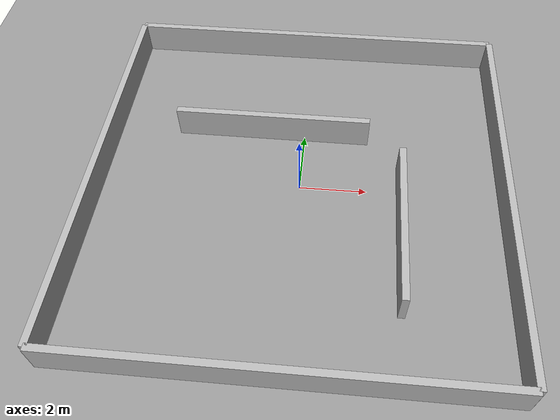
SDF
<?xml version="1.0" ?>
<sdf version="1.8">
  <world name="exploration_test">

    <!-- Core system plugins. Fortress requires these to be listed
         explicitly (Harmonic+ loads most of these by default). -->
    <plugin filename="libignition-gazebo-physics-system.so"
            name="ignition::gazebo::systems::Physics" />
    <plugin filename="libignition-gazebo-user-commands-system.so"
            name="ignition::gazebo::systems::UserCommands" />
    <plugin filename="libignition-gazebo-scene-broadcaster-system.so"
            name="ignition::gazebo::systems::SceneBroadcaster" />
    <!-- Required for the lidar sensors on the rovers to produce data -->
    <plugin filename="libignition-gazebo-sensors-system.so"
            name="ignition::gazebo::systems::Sensors">
      <render_engine>ogre2</render_engine>
    </plugin>
    <!-- Required for the IMU sensors -->
    <plugin filename="libignition-gazebo-imu-system.so"
            name="ignition::gazebo::systems::Imu" />

    <light type="directional" name="sun">
      <cast_shadows>true</cast_shadows>
      <pose>0 0 10 0 0 0</pose>
      <diffuse>0.8 0.8 0.8 1</diffuse>
      <specular>0.2 0.2 0.2 1</specular>
      <direction>-0.5 0.1 -0.9</direction>
    </light>

    <model name="ground_plane">
      <static>true</static>
      <link name="link">
        <collision name="collision">
          <geometry><plane><normal>0 0 1</normal><size>40 40</size></plane></geometry>
        </collision>
        <visual name="visual">
          <geometry><plane><normal>0 0 1</normal><size>40 40</size></plane></geometry>
          <material>
            <ambient>0.6 0.6 0.6 1</ambient>
            <diffuse>0.6 0.6 0.6 1</diffuse>
          </material>
        </visual>
      </link>
    </model>

    <!-- A handful of rooms/corridors so frontier exploration has
         something to do. Each wall is a static box; extend this
         layout freely once the basic swarm is spawning correctly. -->
    <model name="wall_outer_north">
      <static>true</static>
      <pose>0 6 0.5 0 0 0</pose>
      <link name="link">
        <collision name="collision"><geometry><box><size>12 0.2 1</size></box></geometry></collision>
        <visual name="visual"><geometry><box><size>12 0.2 1</size></box></geometry></visual>
      </link>
    </model>
    <model name="wall_outer_south">
      <static>true</static>
      <pose>0 -6 0.5 0 0 0</pose>
      <link name="link">
        <collision name="collision"><geometry><box><size>12 0.2 1</size></box></geometry></collision>
        <visual name="visual"><geometry><box><size>12 0.2 1</size></box></geometry></visual>
      </link>
    </model>
    <model name="wall_outer_east">
      <static>true</static>
      <pose>6 0 0.5 0 0 1.5708</pose>
      <link name="link">
        <collision name="collision"><geometry><box><size>12 0.2 1</size></box></geometry></collision>
        <visual name="visual"><geometry><box><size>12 0.2 1</size></box></geometry></visual>
      </link>
    </model>
    <model name="wall_outer_west">
      <static>true</static>
      <pose>-6 0 0.5 0 0 1.5708</pose>
      <link name="link">
        <collision name="collision"><geometry><box><size>12 0.2 1</size></box></geometry></collision>
        <visual name="visual"><geometry><box><size>12 0.2 1</size></box></geometry></visual>
      </link>
    </model>

    <!-- interior partition splitting the space into two rooms
         with a corridor gap, to force exploration/coordination -->
    <model name="wall_interior_1">
      <static>true</static>
      <pose>-1 2 0.5 0 0 0</pose>
      <link name="link">
        <collision name="collision"><geometry><box><size>6 0.2 1</size></box></geometry></collision>
        <visual name="visual"><geometry><box><size>6 0.2 1</size></box></geometry></visual>
      </link>
    </model>
    <model name="wall_interior_2">
      <static>true</static>
      <pose>3 -1.5 0.5 0 0 1.5708</pose>
      <link name="link">
        <collision name="collision"><geometry><box><size>5 0.2 1</size></box></geometry></collision>
        <visual name="visual"><geometry><box><size>5 0.2 1</size></box></geometry></visual>
      </link>
    </model>

  </world>
</sdf>
